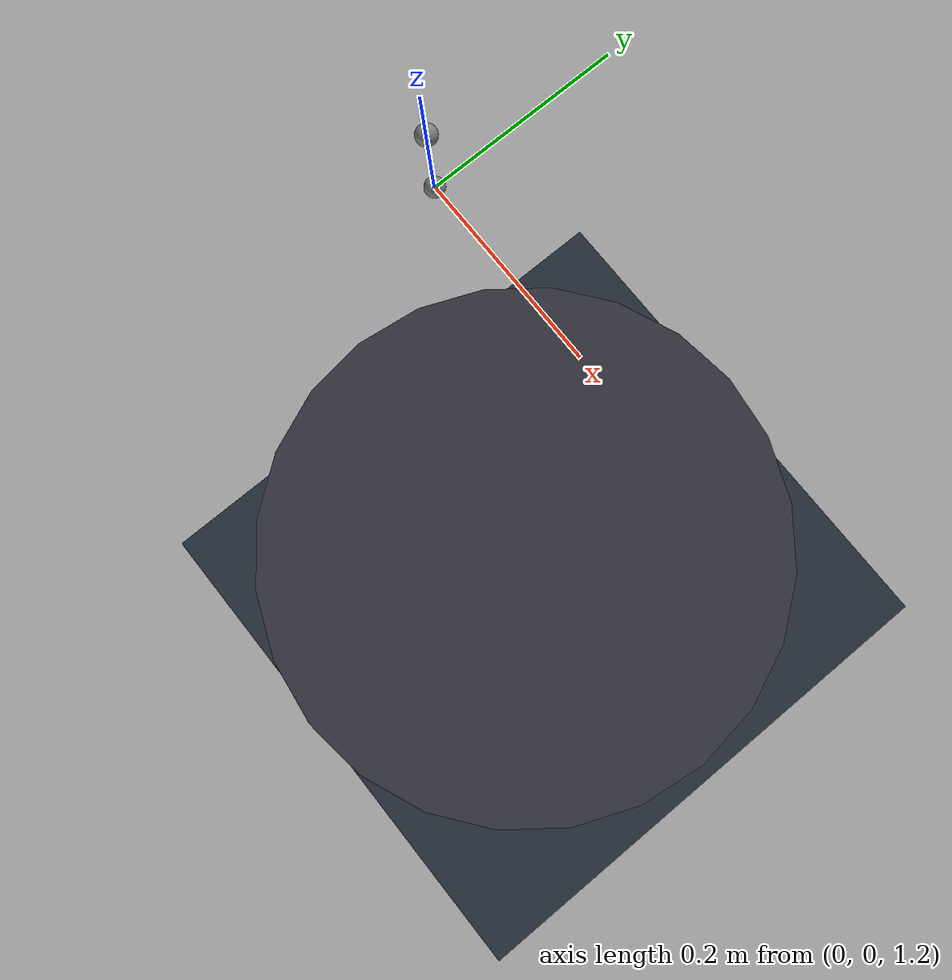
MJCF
<mujoco model="H2">
  <option timestep="0.005" gravity="0 0 -9.81" integrator="implicitfast" cone="elliptic" iterations="100" ls_iterations="50" />
  <compiler angle="radian" />
  <default>
    <joint damping="0.05" armature="0.01" frictionloss="0.2" />
    <default class="h2">
      <default class="visual">
        <geom type="mesh" density="0" contype="0" conaffinity="0" group="2" />
      </default>
      <default class="collision">
        <geom type="capsule" priority="1" condim="6" group="3" />
        <default class="foot_capsule">
          <geom size="0.01" />
        </default>
      </default>
      <site rgba="1 0 0 1" group="5" />
    </default>
  </default>
  <worldbody>
    <geom name="floor" type="plane" size="30 30 .1" rgba=".15 .18 .22 1" friction=".6 .005 .0001" condim="3" />
    <body name="pelvis" pos="0 0 1.2">
      <site name="imu" size="0.01" pos="0.0 0.0 0.0" />
      <joint name="floating_base_joint" type="free" limited="false" actuatorfrclimited="false" />
      <body name="left_hip_pitch_link" pos="0 0.08038 -0.046407" quat="0.965926 -0.25882 0 0">
        <inertial pos="0.00294368 0.061102 -0.017351" quat="0.89044 0.453883 -0.0133707 -0.0304704" mass="2.8737" diaginertia="0.00537408 0.00421163 0.0036878" />
        <joint name="left_hip_pitch_joint" pos="0 0 0" axis="0 1 0" range="-2.4526 2.77542" actuatorfrcrange="-360 360" />
        <body name="left_hip_roll_link" pos="0.041774 0.0635 -0.019" quat="0.965926 0.25882 0 0">
          <inertial pos="-0.0175789 -0.00607425 -0.041315" quat="-0.165515 0.598251 -0.0524355 0.782273" mass="0.785079" diaginertia="0.0023778 0.00200443 0.0015153" />
          <joint name="left_hip_roll_joint" pos="0 0 0" axis="1 0 0" range="-0.467441 2.16886" actuatorfrcrange="-360 360" />
          <body name="left_hip_yaw_link" pos="-0.028187 -0.0095 -0.0737">
            <inertial pos="0.00069408 -0.0108659 -0.113015" quat="0.621956 -0.0405938 0.0198649 0.781747" mass="7.0875" diaginertia="0.0514013 0.0505964 0.0130063" />
            <joint name="left_hip_yaw_joint" pos="0 0 0" axis="0 0 1" range="-2.827 2.827" actuatorfrcrange="-360 360" />
            <body name="left_knee_link" pos="-0.010308 0.022549 -0.31959">
              <inertial pos="0.00461331 -0.022549 -0.167155" quat="0.689662 0.00325283 0.00290593 0.724118" mass="4.3534" diaginertia="0.0512388 0.0510884 0.00333998" />
              <joint name="left_knee_joint" pos="0 0 0" axis="0 1 0" range="-0.08725 2.53025" actuatorfrcrange="-360 360" />
              <body name="left_ankle_roll_link" pos="0.032719 -0.023002 -0.49662">
                <inertial pos="-0.0174063 6.424e-05 -0.0002146" quat="0.499157 0.502573 -0.497809 0.500449" mass="0.123182" diaginertia="4.00501e-05 3.43207e-05 1.44993e-05" />
                <joint name="left_ankle_roll_joint" pos="0 0 0" axis="1 0 0" range="-0.349066 0.296706" actuatorfrcrange="-19 19" />
                <body name="left_ankle_pitch_link" pos="-0.014516 -0.0373 0">
                  <inertial pos="0.032059 0.0370053 -0.0288282" quat="6.19452e-05 0.72345 -3.0004e-05 0.690377" mass="0.894967" diaginertia="0.00438317 0.00410964 0.000599978" />
                  <joint name="left_ankle_pitch_joint" pos="0 0 0" axis="0 1 0" range="-1.13446 0.610865" actuatorfrcrange="-66.88 66.88" />
                  <geom name="left_foot1_collision" class="foot_capsule" fromto="0.13 0.008 -0.038 0.08 0.008 -0.038" />
                  <geom name="left_foot2_collision" class="foot_capsule" fromto="-0.065 0.018 -0.038 0.14 0.018 -0.038" />
                  <geom name="left_foot3_collision" class="foot_capsule" fromto="-0.068 0.027 -0.038 0.145 0.027 -0.038" />
                  <geom name="left_foot4_collision" class="foot_capsule" fromto="-0.07 0.037 -0.038 0.15 0.037 -0.038" />
                  <geom name="left_foot5_collision" class="foot_capsule" fromto="-0.068 0.047 -0.038 0.145 0.047 -0.038" />
                  <geom name="left_foot6_collision" class="foot_capsule" fromto="-0.065 0.055 -0.038 0.14 0.055 -0.038" />
                  <geom name="left_foot7_collision" class="foot_capsule" fromto="0.13 0.065 -0.038 0.08 0.065 -0.038" />
                </body>
              </body>
              <geom name="left_shin_collision" class="collision" size="0.03" fromto="0.03 0 -0.05 0 0 -0.2" />
              <geom name="left_linkage_brace_collision" class="collision" size="0.02" fromto="0 0 -0.28 0.02 0 -0.45" />
            </body>
            <geom name="left_thigh_collision" class="collision" size="0.05" fromto="0 0 -0.05 0.015 0 -0.25" />
          </body>
          <geom name="left_hip_collision" class="collision" size="0.06" fromto="-0.013 0 0 -0.013 0 -0.025" />
        </body>
      </body>
      <body name="right_hip_pitch_link" pos="0 -0.08038 -0.046407" quat="0.965926 0.25882 0 0">
        <inertial pos="0.00294368 -0.061102 -0.017351" quat="0.453883 0.89044 0.0304704 0.0133707" mass="2.8737" diaginertia="0.00537408 0.00421163 0.0036878" />
        <joint name="right_hip_pitch_joint" pos="0 0 0" axis="0 1 0" range="-2.4526 2.77542" actuatorfrcrange="-360 360" />
        <body name="right_hip_roll_link" pos="0.041774 -0.0635 -0.019" quat="0.965926 -0.25882 0 0">
          <inertial pos="-0.0175789 0.00607425 -0.041315" quat="0.165515 0.598251 0.0524355 0.782273" mass="0.75122" diaginertia="0.0023778 0.00200443 0.0015153" />
          <joint name="right_hip_roll_joint" pos="0 0 0" axis="1 0 0" range="-2.16886 0.467441" actuatorfrcrange="-360 360" />
          <body name="right_hip_yaw_link" pos="-0.028187 0.0095 -0.0737">
            <inertial pos="0.00069408 0.0108659 -0.113015" quat="0.781747 0.0198649 -0.0405938 0.621956" mass="7.0875" diaginertia="0.0514013 0.0505964 0.0130063" />
            <joint name="right_hip_yaw_joint" pos="0 0 0" axis="0 0 1" range="-2.827 2.827" actuatorfrcrange="-360 360" />
            <body name="right_knee_link" pos="-0.010308 -0.022549 -0.31959">
              <inertial pos="0.00461331 0.022549 -0.167155" quat="0.724118 0.00290593 0.00325283 0.689662" mass="4.3534" diaginertia="0.0512388 0.0510884 0.00333998" />
              <joint name="right_knee_joint" pos="0 0 0" axis="0 1 0" range="-0.08725 2.53025" actuatorfrcrange="-360 360" />
              <body name="right_ankle_roll_link" pos="0.032719 0.023002 -0.49662">
                <inertial pos="-0.0174063 -6.424e-05 -0.0002146" quat="0.502573 0.499157 -0.500449 0.497809" mass="0.123182" diaginertia="4.00501e-05 3.43207e-05 1.44993e-05" />
                <joint name="right_ankle_roll_joint" pos="0 0 0" axis="1 0 0" range="-0.296706 0.349066" actuatorfrcrange="-19 19" />
                <body name="right_ankle_pitch_link" pos="-0.014516 0.0373 0">
                  <inertial pos="0.032059 -0.0370053 -0.0288282" quat="-6.19452e-05 0.72345 3.0004e-05 0.690377" mass="0.894967" diaginertia="0.00438317 0.00410964 0.000599978" />
                  <joint name="right_ankle_pitch_joint" pos="0 0 0" axis="0 1 0" range="-1.13446 0.610865" actuatorfrcrange="-66.88 66.88" />
                  <geom name="right_foot1_collision" class="foot_capsule" fromto="0.13 -0.008 -0.038 0.08 -0.008 -0.038" />
                  <geom name="right_foot2_collision" class="foot_capsule" fromto="-0.065 -0.018 -0.038 0.14 -0.018 -0.038" />
                  <geom name="right_foot3_collision" class="foot_capsule" fromto="-0.068 -0.027 -0.038 0.145 -0.027 -0.038" />
                  <geom name="right_foot4_collision" class="foot_capsule" fromto="-0.07 -0.037 -0.038 0.15 -0.037 -0.038" />
                  <geom name="right_foot5_collision" class="foot_capsule" fromto="-0.068 -0.047 -0.038 0.145 -0.047 -0.038" />
                  <geom name="right_foot6_collision" class="foot_capsule" fromto="-0.065 -0.055 -0.038 0.14 -0.055 -0.038" />
                  <geom name="right_foot7_collision" class="foot_capsule" fromto="0.13 -0.065 -0.038 0.08 -0.065 -0.038" />
                </body>
              </body>
              <geom name="right_shin_collision" class="collision" size="0.03" fromto="0.03 0 -0.05 0 0 -0.2" />
              <geom name="right_linkage_brace_collision" class="collision" size="0.02" fromto="0 0 -0.28 0.02 0 -0.45" />
            </body>
            <geom name="right_thigh_collision" class="collision" size="0.05" fromto="0 0 -0.05 0.015 0 -0.25" />
          </body>
          <geom name="right_hip_collision" class="collision" size="0.06" fromto="-0.033 0 0 -0.033 0 -0.025" />
        </body>
      </body>
      <body name="waist_yaw_link" pos="0 0 0.090537">
        <inertial pos="0.00648295 1.018e-05 0.0176063" quat="0.000115436 0.720073 0.000256241 0.693898" mass="0.312936" diaginertia="0.00033891 0.00028436 0.00012018" />
        <joint name="waist_yaw_joint" pos="0 0 0" axis="0 0 1" range="-1.7453 1.7453" actuatorfrcrange="-120 120" />
        <body name="waist_roll_link" pos="0 0 0.0325">
          <inertial pos="0 0.00061119 0" quat="0.5 0.5 -0.5 0.5" mass="0.138419" diaginertia="2.304e-05 1.668e-05 1.509e-05" />
          <joint name="waist_roll_joint" pos="0 0 0" axis="1 0 0" range="-0.5236 0.5236" actuatorfrcrange="-180 180" />
          <body name="torso_link">
            <site name="secondary_imu" size="0.01" pos="0.0 0.0 0.0" />
            <inertial pos="0.00740421 0.00628045 0.215575" quat="0.99932 -0.0321662 -0.00775231 0.0162839" mass="18.532" diaginertia="0.287321 0.26278 0.0934525" />
            <joint name="waist_pitch_joint" pos="0 0 0" axis="0 1 0" range="-0.43633 0.5236" actuatorfrcrange="-180 180" />
            <body name="head_pitch_link" pos="-0.0001147 -0.0189 0.4218">
              <inertial pos="0.000126 0.018817 0.052939" quat="0.999996 -0.000955249 -0.00262397 -0.000580497" mass="1.82" diaginertia="0.00538697 0.00532442 0.00140982" />
              <body name="head_yaw_link" pos="0 0.0189 0.1335">
                <inertial pos="0.023654 -0.000734 0.042315" quat="0.667311 -0.227767 -0.231751 0.670156" mass="1.3" diaginertia="0.00535274 0.00472336 0.00378091" />
                <geom name="head_collision" class="collision" type="sphere" size="0.065" pos="0.02 0 0.02" />
              </body>
            </body>
            <body name="left_shoulder_pitch_link" pos="0.0030848 0.11 0.36008" quat="0.990959 0.134164 0 0">
              <inertial pos="-0.0027817 0.050393 -0.023914" quat="0.959427 0.279803 0.00644957 0.0341716" mass="1.1927" diaginertia="0.00174925 0.00162902 0.000852428" />
              <joint name="left_shoulder_pitch_joint" pos="0 0 0" axis="0 1 0" range="-2.618 1.833" actuatorfrcrange="-130 130" />
              <body name="left_shoulder_roll_link" pos="-0.0032074 0.059938 -0.039865" quat="0.990959 -0.134164 0 0">
                <inertial pos="-0.00126759 0.00399799 -0.0665267" quat="0.719226 0.0130341 -0.00543937 0.694633" mass="1.10983" diaginertia="0.00193836 0.00176489 0.00106378" />
                <joint name="left_shoulder_roll_joint" pos="0 0 0" axis="1 0 0" range="-0.517 2.494" actuatorfrcrange="-60 60" />
                <body name="left_shoulder_yaw_link" pos="-0.0025601 0.0036752 -0.10421">
                  <inertial pos="0.00265957 0.0123454 -0.059622" quat="0.655577 0.0514587 -0.154929 0.737271" mass="0.352739" diaginertia="0.000897689 0.000854204 0.000287447" />
                  <joint name="left_shoulder_yaw_joint" pos="0 0 0" axis="0 0 1" range="-2.618 2.618" actuatorfrcrange="-60 60" />
                  <body name="left_elbow_link" pos="0.016655 0.02211 -0.12792">
                    <inertial pos="0.0506767 -0.0216173 -0.00672238" quat="0.162352 0.731329 0.192833 0.633732" mass="1.70612" diaginertia="0.00522743 0.00521428 0.00111897" />
                    <joint name="left_elbow_joint" pos="0 0 0" axis="0 1 0" range="-0.986 3.071" actuatorfrcrange="-60 60" />
                    <body name="left_wrist_roll_link" pos="0.13119 -0.021497 -0.013769">
                      <inertial pos="0.035915 -0.00154506 0.00012879" quat="0.349429 0.616315 -0.3656 0.603649" mass="0.77426" diaginertia="0.000715547 0.000661189 0.000632495" />
                      <joint name="left_wrist_roll_joint" pos="0 0 0" axis="1 0 0" range="-2.618 2.618" actuatorfrcrange="-60 60" />
                      <body name="left_wrist_pitch_link" pos="0.037994 0.031144 0.00045104">
                        <inertial pos="0.0651093 -0.0317607 0.00235463" quat="0.491682 0.228754 0.718653 0.435268" mass="0.615258" diaginertia="0.000423535 0.000417983 0.000396162" />
                        <joint name="left_wrist_pitch_joint" pos="0 0 0" axis="0 1 0" range="-0.576 0.576" actuatorfrcrange="-10 10" />
                        <body name="left_wrist_yaw_link" pos="0.069283 -0.031045 -0.0006247">
                          <inertial pos="0.0800267 -0.00476807 0.00340465" quat="0.488112 0.56744 0.412641 0.51912" mass="0.616082" diaginertia="0.00189912 0.00166583 0.000524241" />
                          <joint name="left_wrist_yaw_joint" pos="0 0 0" axis="0 0 1" range="-1.22 1.22" actuatorfrcrange="-10 10" />
                          <geom name="left_hand_collision" class="collision" size="0.035" rgba="0.2 0.6 0.2 0.2" fromto="0.1 -0.01 0.0 0.18 -0.01 0.0" />
                        </body>
                        <geom name="left_wrist_collision" class="collision" size="0.035" fromto="-0.03 0.0 0 0.05 0.0 0" />
                      </body>
                    </body>
                    <geom name="left_elbow_yaw_collision" class="collision" size="0.035" fromto="0 -0.025 -0.01 0.1 -0.025 -0.01" />
                  </body>
                  <geom name="left_shoulder_yaw_collision" class="collision" size="0.035" fromto="0 0 -0.06 0 0 0.09" />
                </body>
              </body>
            </body>
            <body name="right_shoulder_pitch_link" pos="0.0030848 -0.11 0.36008" quat="0.990959 -0.134164 0 0">
              <inertial pos="-0.0027814 -0.050393 -0.023914" quat="0.959425 -0.279804 0.00643587 -0.0342398" mass="1.1927" diaginertia="0.00174925 0.00162902 0.000852428" />
              <joint name="right_shoulder_pitch_joint" pos="0 0 0" axis="0 1 0" range="-2.618 1.833" actuatorfrcrange="-130 130" />
              <body name="right_shoulder_roll_link" pos="-0.0032074 -0.059938 -0.039865" quat="0.990959 0.134164 0 0">
                <inertial pos="-0.00126782 -0.0039981 -0.0665261" quat="0.694607 -0.0054503 0.0130148 0.719251" mass="1.10982" diaginertia="0.00193838 0.00176496 0.00106379" />
                <joint name="right_shoulder_roll_joint" pos="0 0 0" axis="1 0 0" range="-2.494 0.517" actuatorfrcrange="-60 60" />
                <body name="right_shoulder_yaw_link" pos="-0.0025601 -0.0036752 -0.10421">
                  <inertial pos="0.00266059 -0.0123451 -0.0596234" quat="0.737262 -0.154921 0.0514524 0.65559" mass="0.352742" diaginertia="0.000897692 0.000854184 0.000287444" />
                  <joint name="right_shoulder_yaw_joint" pos="0 0 0" axis="0 0 1" range="-2.618 2.618" actuatorfrcrange="-60 60" />
                  <body name="right_elbow_link" pos="0.016655 -0.02211 -0.12792">
                    <inertial pos="0.0506784 0.0216171 -0.00672338" quat="-0.1624 0.731318 -0.192894 0.633713" mass="1.70617" diaginertia="0.00522767 0.0052145 0.00111905" />
                    <joint name="right_elbow_joint" pos="0 0 0" axis="0 1 0" range="-0.986 3.071" actuatorfrcrange="-60 60" />
                    <body name="right_wrist_roll_link" pos="0.13119 0.021497 -0.013769">
                      <inertial pos="0.0359137 0.00155865 0.00014187" quat="0.61587 0.348982 -0.602387 0.368844" mass="0.774265" diaginertia="0.00071595 0.000661595 0.000632525" />
                      <joint name="right_wrist_roll_joint" pos="0 0 0" axis="1 0 0" range="-2.618 2.618" actuatorfrcrange="-60 60" />
                      <body name="right_wrist_pitch_link" pos="0.037994 -0.031144 0.00045104">
                        <inertial pos="0.0651131 0.0317523 0.00231986" quat="0.440426 0.716762 0.242507 0.483185" mass="0.615837" diaginertia="0.000424256 0.000418373 0.000396861" />
                        <joint name="right_wrist_pitch_joint" pos="0 0 0" axis="0 1 0" range="-0.576 0.576" actuatorfrcrange="-10 10" />
                        <body name="right_wrist_yaw_link" pos="0.069283 0.031045 -0.0006247">
                          <inertial pos="0.0800267 0.00476817 0.00340501" quat="0.519117 0.41264 0.567453 0.488102" mass="0.616082" diaginertia="0.00189915 0.00166585 0.00052423" />
                          <joint name="right_wrist_yaw_joint" pos="0 0 0" axis="0 0 1" range="-1.22 1.22" actuatorfrcrange="-10 10" />
                          <geom name="right_hand_collision" class="collision" size="0.035" rgba="0.2 0.6 0.2 0.2" fromto="0.1 0.01 0.0 0.18 0.01 0.0" />
                          <geom name="racket_handle" type="capsule" fromto="0 0 0 0 0 0.3" size="0.016" density="0" contype="0" conaffinity="0" group="2" rgba="0.2 0.2 0.22 1" />
                          <geom name="racket_rim" type="cylinder" pos="0.1025 -0.004 0.4" size="0.12 0.004" density="0" contype="0" conaffinity="0" group="2" rgba="0.2 0.2 0.24 1" />
                          <geom name="racket_strings" type="cylinder" pos="0.1025 -0.004 0.4" size="0.112 0.0012" density="0" contype="0" conaffinity="0" group="2" rgba="0.94 0.94 0.94 0.4" />
                        </body>
                        <geom name="right_wrist_collision" class="collision" size="0.035" fromto="-0.03 0.0 0 0.05 0.0 0" />
                      </body>
                    </body>
                    <geom name="right_elbow_yaw_collision" class="collision" size="0.035" fromto="0 0.025 -0.01 0.1 0.025 -0.01" />
                  </body>
                  <geom name="right_shoulder_yaw_collision" class="collision" size="0.035" fromto="0 0 -0.06 0 0 0.09" />
                </body>
              </body>
            </body>
            <geom name="torso_collision" class="collision" size="0.09" fromto="0.0 0 0.12 0.0 0 0.3" />
          </body>
        </body>
      </body>
      <geom name="pelvis_collision" class="collision" type="sphere" size="0.08" pos="0 0 0" />
      <inertial pos="0.00027091 -0.00003310 -0.01452551" quat="0.507123 0.498697 0.493953 0.500138" mass="8.5477" diaginertia="0.0226885 0.0272349 0.0352772" />
    </body>
  </worldbody>
  <contact>
    <exclude body1="left_elbow_link" body2="left_wrist_pitch_link" />
    <exclude body1="right_elbow_link" body2="right_wrist_pitch_link" />
    <exclude body1="pelvis" body2="right_hip_roll_link" />
    <exclude body1="pelvis" body2="left_hip_roll_link" />
  </contact>
  <sensor>
    <gyro name="imu_ang_vel" site="imu" />
    <velocimeter name="imu_lin_vel" site="imu" />
    <accelerometer name="imu_lin_acc" site="imu" />
    <subtreeangmom name="root_angmom" body="torso_link" />
  </sensor>
  <actuator>
    <position name="left_hip_pitch_joint_motor" joint="left_hip_pitch_joint" kp="200" kv="4" forcerange="-360 360" ctrllimited="false" ctrlrange="-2.4526 2.77542" />
    <position name="left_hip_roll_joint_motor" joint="left_hip_roll_joint" kp="200" kv="4" forcerange="-360 360" ctrllimited="false" ctrlrange="-0.467441 2.16886" />
    <position name="left_hip_yaw_joint_motor" joint="left_hip_yaw_joint" kp="200" kv="4" forcerange="-360 360" ctrllimited="false" ctrlrange="-2.827 2.827" />
    <position name="left_knee_joint_motor" joint="left_knee_joint" kp="200" kv="4" forcerange="-360 360" ctrllimited="false" ctrlrange="-0.08725 2.53025" />
    <position name="left_ankle_roll_joint_motor" joint="left_ankle_roll_joint" kp="40" kv="2" forcerange="-19 19" ctrllimited="false" ctrlrange="-0.349066 0.296706" />
    <position name="left_ankle_pitch_joint_motor" joint="left_ankle_pitch_joint" kp="40" kv="2" forcerange="-66.88 66.88" ctrllimited="false" ctrlrange="-1.13446 0.610865" />
    <position name="right_hip_pitch_joint_motor" joint="right_hip_pitch_joint" kp="200" kv="4" forcerange="-360 360" ctrllimited="false" ctrlrange="-2.4526 2.77542" />
    <position name="right_hip_roll_joint_motor" joint="right_hip_roll_joint" kp="200" kv="4" forcerange="-360 360" ctrllimited="false" ctrlrange="-2.16886 0.467441" />
    <position name="right_hip_yaw_joint_motor" joint="right_hip_yaw_joint" kp="200" kv="4" forcerange="-360 360" ctrllimited="false" ctrlrange="-2.827 2.827" />
    <position name="right_knee_joint_motor" joint="right_knee_joint" kp="200" kv="4" forcerange="-360 360" ctrllimited="false" ctrlrange="-0.08725 2.53025" />
    <position name="right_ankle_roll_joint_motor" joint="right_ankle_roll_joint" kp="40" kv="2" forcerange="-19 19" ctrllimited="false" ctrlrange="-0.296706 0.349066" />
    <position name="right_ankle_pitch_joint_motor" joint="right_ankle_pitch_joint" kp="40" kv="2" forcerange="-66.88 66.88" ctrllimited="false" ctrlrange="-1.13446 0.610865" />
    <position name="waist_yaw_joint_motor" joint="waist_yaw_joint" kp="150" kv="3" forcerange="-120 120" ctrllimited="false" ctrlrange="-1.7453 1.7453" />
    <position name="waist_roll_joint_motor" joint="waist_roll_joint" kp="150" kv="3" forcerange="-180 180" ctrllimited="false" ctrlrange="-0.5236 0.5236" />
    <position name="waist_pitch_joint_motor" joint="waist_pitch_joint" kp="150" kv="3" forcerange="-180 180" ctrllimited="false" ctrlrange="-0.43633 0.5236" />
    <position name="left_shoulder_pitch_joint_motor" joint="left_shoulder_pitch_joint" kp="40" kv="2" forcerange="-130 130" ctrllimited="false" ctrlrange="-2.618 1.833" />
    <position name="left_shoulder_roll_joint_motor" joint="left_shoulder_roll_joint" kp="40" kv="2" forcerange="-60 60" ctrllimited="false" ctrlrange="-0.517 2.494" />
    <position name="left_shoulder_yaw_joint_motor" joint="left_shoulder_yaw_joint" kp="40" kv="2" forcerange="-60 60" ctrllimited="false" ctrlrange="-2.618 2.618" />
    <position name="left_elbow_joint_motor" joint="left_elbow_joint" kp="40" kv="2" forcerange="-60 60" ctrllimited="false" ctrlrange="-0.986 3.071" />
    <position name="left_wrist_roll_joint_motor" joint="left_wrist_roll_joint" kp="40" kv="2" forcerange="-60 60" ctrllimited="false" ctrlrange="-2.618 2.618" />
    <position name="left_wrist_pitch_joint_motor" joint="left_wrist_pitch_joint" kp="20" kv="1" forcerange="-10 10" ctrllimited="false" ctrlrange="-0.576 0.576" />
    <position name="left_wrist_yaw_joint_motor" joint="left_wrist_yaw_joint" kp="20" kv="1" forcerange="-10 10" ctrllimited="false" ctrlrange="-1.22 1.22" />
    <position name="right_shoulder_pitch_joint_motor" joint="right_shoulder_pitch_joint" kp="40" kv="2" forcerange="-130 130" ctrllimited="false" ctrlrange="-2.618 1.833" />
    <position name="right_shoulder_roll_joint_motor" joint="right_shoulder_roll_joint" kp="40" kv="2" forcerange="-60 60" ctrllimited="false" ctrlrange="-2.494 0.517" />
    <position name="right_shoulder_yaw_joint_motor" joint="right_shoulder_yaw_joint" kp="40" kv="2" forcerange="-60 60" ctrllimited="false" ctrlrange="-2.618 2.618" />
    <position name="right_elbow_joint_motor" joint="right_elbow_joint" kp="40" kv="2" forcerange="-60 60" ctrllimited="false" ctrlrange="-0.986 3.071" />
    <position name="right_wrist_roll_joint_motor" joint="right_wrist_roll_joint" kp="40" kv="2" forcerange="-60 60" ctrllimited="false" ctrlrange="-2.618 2.618" />
    <position name="right_wrist_pitch_joint_motor" joint="right_wrist_pitch_joint" kp="20" kv="1" forcerange="-10 10" ctrllimited="false" ctrlrange="-0.576 0.576" />
    <position name="right_wrist_yaw_joint_motor" joint="right_wrist_yaw_joint" kp="20" kv="1" forcerange="-10 10" ctrllimited="false" ctrlrange="-1.22 1.22" />
  </actuator>
  <keyframe>
    <key name="home" qpos="0 0 1.03 1 0 0 0 -0.25 0 0 0.5 0 -0.25 -0.25 0 0 0.5 0 -0.25 0 0 0 0.35 0.18 0 0.87 0 0 0 0.35 -0.18 0 0.87 0 0 0" ctrl="0 0 0 0 0 0 0 0 0 0 0 0 0 0 0 0 0 0 0 0 0 0 0 0 0 0 0 0 0" />
  </keyframe>
</mujoco>
